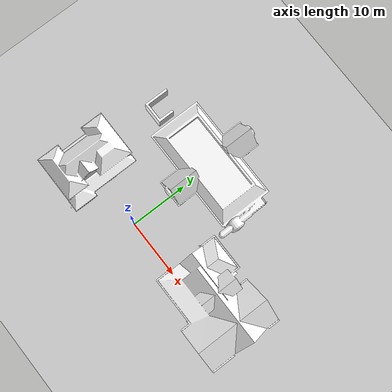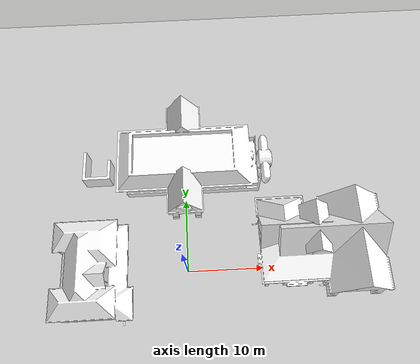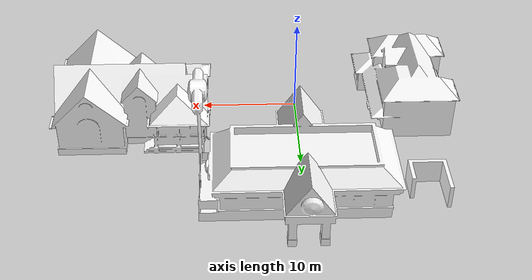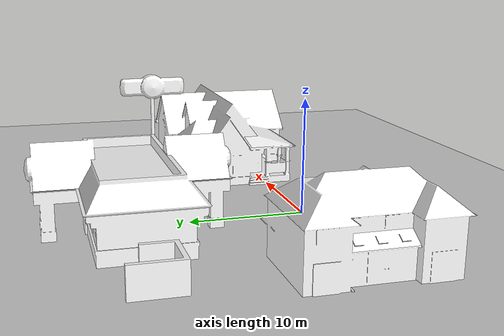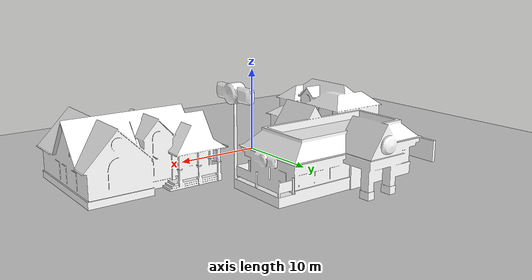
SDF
<sdf version="1.6">
 <world name="default">
  <light name="sun" type="directional">
   <pose>0 0 10 0 -0 0</pose>
   <diffuse>0.8 0.8 0.8 1</diffuse>
   <specular>0.2 0.2 0.2 1</specular>
   <attenuation>
    <range>1000</range>
    <constant>0.9</constant>
    <linear>0.01</linear>
    <quadratic>0.001</quadratic>
   </attenuation>
   <direction>-0.5 0.1 -0.9</direction>
  </light>
  <model name="Fast Food">
   <static>1</static>
   <link name="link">
    <pose>0 0 3.15931 0 -0 0</pose>
    <collision name="collision">
     <geometry><mesh><scale>3 3 2</scale><uri>model://fast_food/meshes/fast_food.dae</uri></mesh></geometry>
    </collision>
    <visual name="visual">
     <geometry><mesh><scale>3 3 2</scale><uri>model://fast_food/meshes/fast_food.dae</uri></mesh></geometry>
     <material>
      <script>
       <uri>model://fast_food/materials/scripts</uri>
       <uri>model://fast_food/materials/textures</uri>
       <name>FastFood/Diffuse</name>
      </script>
      <shader type="normal_map_tangent_space"><normal_map>FastFood_Normal.png</normal_map></shader>
     </material>
    </visual>
   </link>
   <pose>0.107242 14.7986 0 0 -0 0</pose>
  </model>
  <model name="House 2">
   <static>1</static>
   <link name="link">
    <collision name="collision">
     <geometry><mesh><uri>model://house_2/meshes/house_2.dae</uri><scale>1.5 1.5 1.5</scale></mesh></geometry>
    </collision>
    <visual name="visual">
     <geometry><mesh><uri>model://house_2/meshes/house_2.dae</uri><scale>1.5 1.5 1.5</scale></mesh></geometry>
     <material>
      <script>
       <uri>model://house_2/materials/scripts</uri>
       <uri>model://house_2/materials/textures</uri>
       <uri>model://house_1/materials/textures</uri>
       <name>House_2/Diffuse</name>
      </script>
      <shader type="normal_map_tangent_space">
       <normal_map>model://house_1/materials/textures/House_1_Normal.png</normal_map>
      </shader>
     </material>
    </visual>
   </link>
   <pose>-12.4234 1.17743 0 0 0 -1.5707</pose>
  </model>
  <plugin name="ros_interface_plugin" filename="librotors_gazebo_ros_interface_plugin.so"/>
  <spherical_coordinates>
   <surface_model>EARTH_WGS84</surface_model>
   <latitude_deg>47.3667</latitude_deg>
   <longitude_deg>8.55</longitude_deg>
   <elevation>500</elevation>
   <heading_deg>0</heading_deg>
  </spherical_coordinates>
  <physics name="default_physics" default="0" type="ode">
   <ode>
    <solver>
     <type>quick</type>
     <iters>1000</iters>
     <sor>1.3</sor>
     <use_dynamic_moi_rescaling>0</use_dynamic_moi_rescaling>
    </solver>
    <constraints>
     <cfm>0</cfm>
     <erp>0.2</erp>
     <contact_max_correcting_vel>100</contact_max_correcting_vel>
     <contact_surface_layer>0.001</contact_surface_layer>
    </constraints>
   </ode>
   <max_step_size>0.01</max_step_size>
   <real_time_factor>1</real_time_factor>
   <real_time_update_rate>100</real_time_update_rate>
  </physics>
  <gravity>0 0 -9.8</gravity>
  <magnetic_field>6e-06 2.3e-05 -4.2e-05</magnetic_field>
  <atmosphere type="adiabatic"/>
  <scene><ambient>0.4 0.4 0.4 1</ambient><background>0.7 0.7 0.7 1</background><shadows>1</shadows></scene>
  <audio><device>default</device></audio>
  <model name="ground_plane">
   <static>1</static>
   <link name="link">
    <collision name="collision">
     <geometry><plane><normal>0 0 1</normal><size>100 100</size></plane></geometry>
     <surface>
      <contact><collide_bitmask>65535</collide_bitmask></contact>
      <friction><ode><mu>100</mu><mu2>50</mu2></ode></friction>
     </surface>
    </collision>
    <visual name="visual">
     <cast_shadows>0</cast_shadows>
     <geometry><plane><normal>0 0 1</normal><size>100 100</size></plane></geometry>
     <material>
      <script><uri>file://media/materials/scripts/gazebo.material</uri><name>Gazebo/Grey</name></script>
     </material>
    </visual>
   </link>
   <pose>1.88808 5.8176 0 0 -0 0</pose>
  </model>
  <model name="House 1">
   <static>1</static>
   <link name="link">
    <collision name="collision">
     <geometry><mesh><uri>model://house_1/meshes/house_1.dae</uri><scale>1.5 1.5 1.5</scale></mesh></geometry>
    </collision>
    <visual name="visual">
     <geometry><mesh><uri>model://house_1/meshes/house_1.dae</uri><scale>1.5 1.5 1.5</scale></mesh></geometry>
     <material>
      <script>
       <uri>model://house_1/materials/scripts</uri>
       <uri>model://house_1/materials/textures</uri>
       <name>House_1/Diffuse</name>
      </script>
      <shader type="normal_map_tangent_space"><normal_map>House_1_Normal.png</normal_map></shader>
     </material>
    </visual>
   </link>
   <pose>17.5763 2.49979 0 0 -0 0</pose>
  </model>
 </world>
</sdf>
